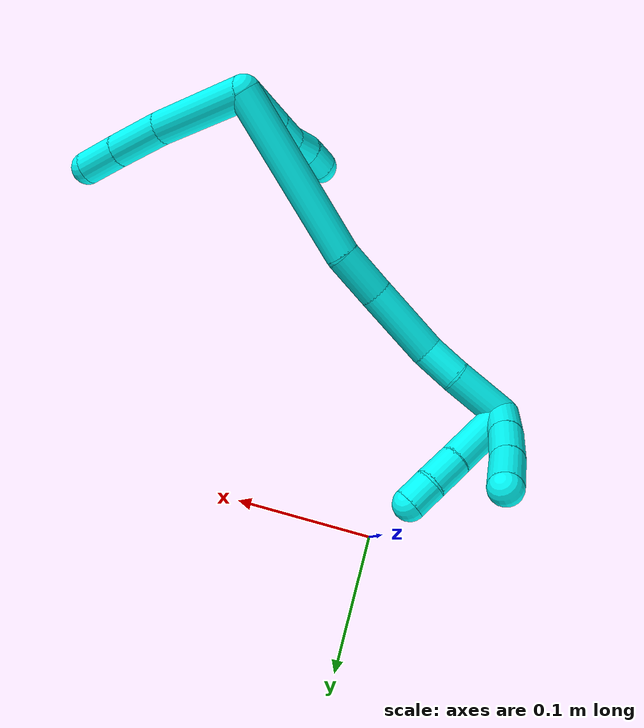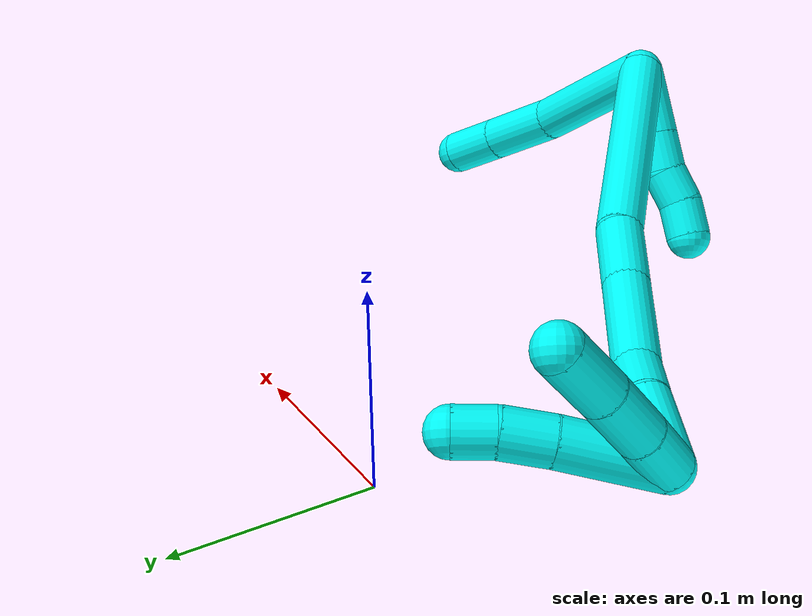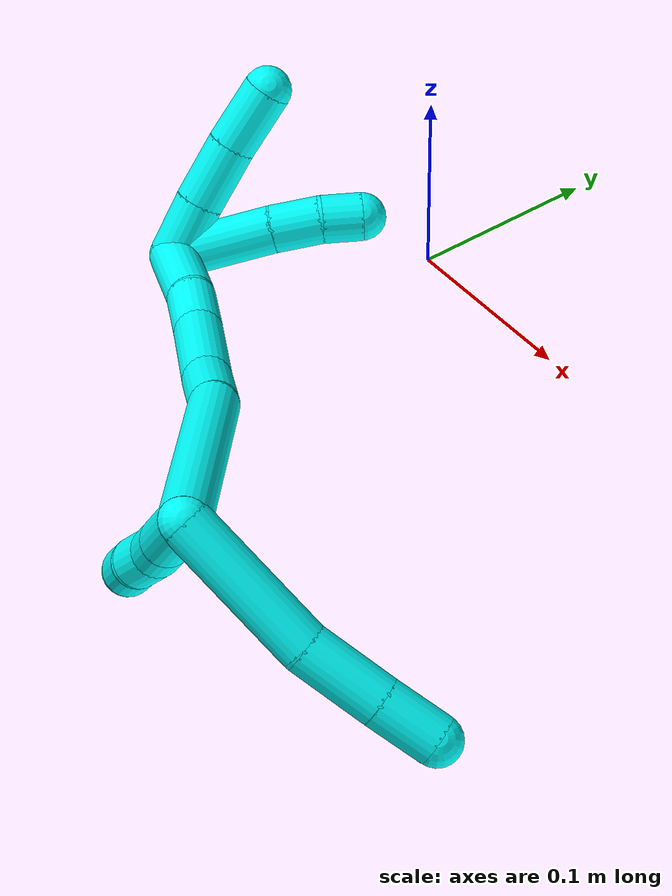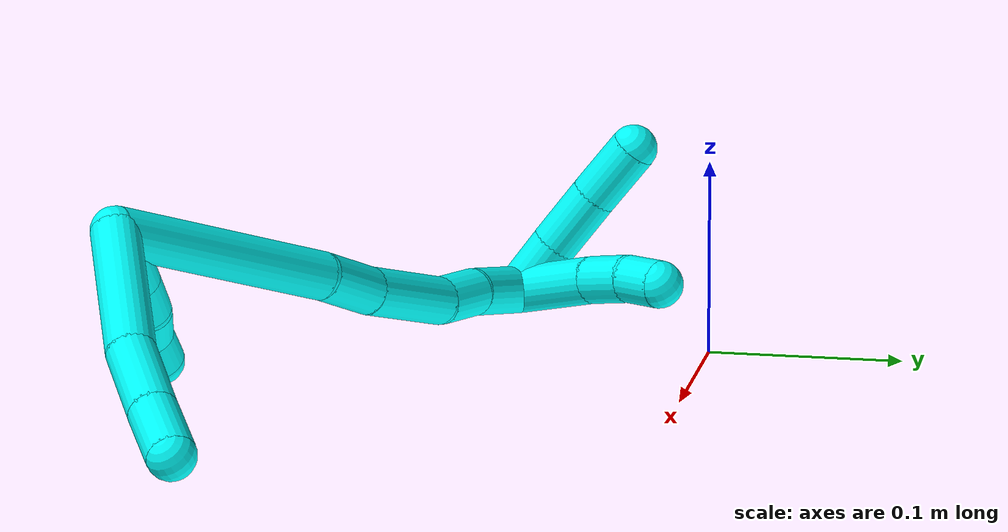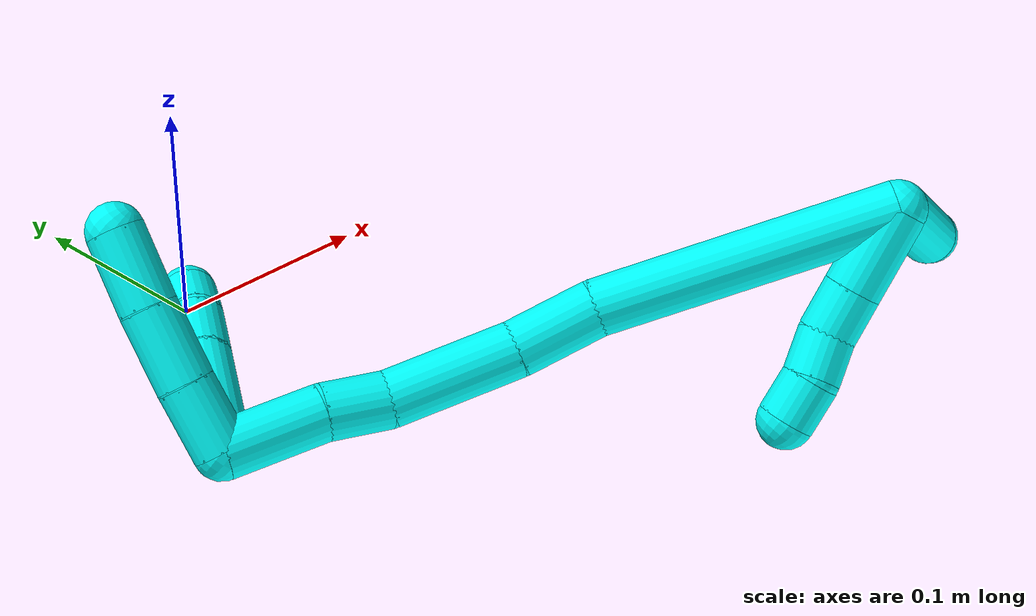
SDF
<sdf version="1.7">
 <world name="default">
  <model name="3">
   <static>0</static>
   <link name="3">
    <collision name="collision-cylinder-e_1_2_8">
     <pose>0.037596 0.007895 -0.004561 -2.09462 1.33288 -1.87535</pose>
     <geometry><cylinder><radius>0.0125</radius><length>0.077372</length></cylinder></geometry>
     <surface>
      <friction><ode><mu>1.16</mu><mu2>1.16</mu2><slip1>0</slip1><slip2>0</slip2></ode></friction>
      <contact><ode><kp>1e+06</kp><kd>1</kd><max_vel>0</max_vel><min_depth>0.001</min_depth></ode></contact>
     </surface>
    </collision>
    <visual name="visual-cylinder-e_1_2_8">
     <pose>0.037596 0.007895 -0.004561 -2.09462 1.33288 -1.87535</pose>
     <geometry><cylinder><radius>0.0125</radius><length>0.077372</length></cylinder></geometry>
     <material><ambient>0.003922 1 0.996078 1</ambient></material>
    </visual>
    <collision name="collision-cylinder-e_2_8_9">
     <pose>0.094361 0.023644 -0.011106 -1.81838 1.17094 -1.41068</pose>
     <geometry><cylinder><radius>0.0125</radius><length>0.041621</length></cylinder></geometry>
     <surface>
      <friction><ode><mu>1.16</mu><mu2>1.16</mu2><slip1>0</slip1><slip2>0</slip2></ode></friction>
      <contact><ode><kp>1e+06</kp><kd>1</kd><max_vel>0</max_vel><min_depth>0.001</min_depth></ode></contact>
     </surface>
    </collision>
    <visual name="visual-cylinder-e_2_8_9">
     <pose>0.094361 0.023644 -0.011106 -1.81838 1.17094 -1.41068</pose>
     <geometry><cylinder><radius>0.0125</radius><length>0.041621</length></cylinder></geometry>
     <material><ambient>0.003922 1 0.996078 1</ambient></material>
    </visual>
    <collision name="collision-cylinder-e_3_9_6">
     <pose>0.127638 0.03773 -0.014671 -1.81902 1.14321 -1.3815</pose>
     <geometry><cylinder><radius>0.0125</radius><length>0.031008</length></cylinder></geometry>
     <surface>
      <friction><ode><mu>1.16</mu><mu2>1.16</mu2><slip1>0</slip1><slip2>0</slip2></ode></friction>
      <contact><ode><kp>1e+06</kp><kd>1</kd><max_vel>0</max_vel><min_depth>0.001</min_depth></ode></contact>
     </surface>
    </collision>
    <visual name="visual-cylinder-e_3_9_6">
     <pose>0.127638 0.03773 -0.014671 -1.81902 1.14321 -1.3815</pose>
     <geometry><cylinder><radius>0.0125</radius><length>0.031008</length></cylinder></geometry>
     <material><ambient>0.003922 1 0.996078 1</ambient></material>
    </visual>
    <collision name="collision-cylinder-e_1_2_10">
     <pose>-0.000119 -0.004001 -0.018741 2.93127 -0.006199 -0.058714</pose>
     <geometry><cylinder><radius>0.0125</radius><length>0.038328</length></cylinder></geometry>
     <surface>
      <friction><ode><mu>1.16</mu><mu2>1.16</mu2><slip1>0</slip1><slip2>0</slip2></ode></friction>
      <contact><ode><kp>1e+06</kp><kd>1</kd><max_vel>0</max_vel><min_depth>0.001</min_depth></ode></contact>
     </surface>
    </collision>
    <visual name="visual-cylinder-e_1_2_10">
     <pose>-0.000119 -0.004001 -0.018741 2.93127 -0.006199 -0.058714</pose>
     <geometry><cylinder><radius>0.0125</radius><length>0.038328</length></cylinder></geometry>
     <material><ambient>0.003922 1 0.996078 1</ambient></material>
    </visual>
    <collision name="collision-cylinder-e_2_10_11">
     <pose>-0.000308 -0.010299 -0.048068 2.92785 -0.006481 -0.060396</pose>
     <geometry><cylinder><radius>0.0125</radius><length>0.021664</length></cylinder></geometry>
     <surface>
      <friction><ode><mu>1.16</mu><mu2>1.16</mu2><slip1>0</slip1><slip2>0</slip2></ode></friction>
      <contact><ode><kp>1e+06</kp><kd>1</kd><max_vel>0</max_vel><min_depth>0.001</min_depth></ode></contact>
     </surface>
    </collision>
    <visual name="visual-cylinder-e_2_10_11">
     <pose>-0.000308 -0.010299 -0.048068 2.92785 -0.006481 -0.060396</pose>
     <geometry><cylinder><radius>0.0125</radius><length>0.021664</length></cylinder></geometry>
     <material><ambient>0.003922 1 0.996078 1</ambient></material>
    </visual>
    <collision name="collision-cylinder-e_3_11_12">
     <pose>-0.001374 -0.016947 -0.067606 2.68928 -0.099705 -0.427076</pose>
     <geometry><cylinder><radius>0.0125</radius><length>0.020006</length></cylinder></geometry>
     <surface>
      <friction><ode><mu>1.16</mu><mu2>1.16</mu2><slip1>0</slip1><slip2>0</slip2></ode></friction>
      <contact><ode><kp>1e+06</kp><kd>1</kd><max_vel>0</max_vel><min_depth>0.001</min_depth></ode></contact>
     </surface>
    </collision>
    <visual name="visual-cylinder-e_3_11_12">
     <pose>-0.001374 -0.016947 -0.067606 2.68928 -0.099705 -0.427076</pose>
     <geometry><cylinder><radius>0.0125</radius><length>0.020006</length></cylinder></geometry>
     <material><ambient>0.003922 1 0.996078 1</ambient></material>
    </visual>
    <collision name="collision-cylinder-e_4_12_5">
     <pose>-0.002783 -0.023194 -0.086369 2.95058 -0.04133 -0.424969</pose>
     <geometry><cylinder><radius>0.0125</radius><length>0.020002</length></cylinder></geometry>
     <surface>
      <friction><ode><mu>1.16</mu><mu2>1.16</mu2><slip1>0</slip1><slip2>0</slip2></ode></friction>
      <contact><ode><kp>1e+06</kp><kd>1</kd><max_vel>0</max_vel><min_depth>0.001</min_depth></ode></contact>
     </surface>
    </collision>
    <visual name="visual-cylinder-e_4_12_5">
     <pose>-0.002783 -0.023194 -0.086369 2.95058 -0.04133 -0.424969</pose>
     <geometry><cylinder><radius>0.0125</radius><length>0.020002</length></cylinder></geometry>
     <material><ambient>0.003922 1 0.996078 1</ambient></material>
    </visual>
    <collision name="collision-cylinder-e_1_2_13">
     <pose>-0.024854 0.026591 -0.055174 -2.6925 -0.385496 1.41422</pose>
     <geometry><cylinder><radius>0.0125</radius><length>0.132196</length></cylinder></geometry>
     <surface>
      <friction><ode><mu>1.16</mu><mu2>1.16</mu2><slip1>0</slip1><slip2>0</slip2></ode></friction>
      <contact><ode><kp>1e+06</kp><kd>1</kd><max_vel>0</max_vel><min_depth>0.001</min_depth></ode></contact>
     </surface>
    </collision>
    <visual name="visual-cylinder-e_1_2_13">
     <pose>-0.024854 0.026591 -0.055174 -2.6925 -0.385496 1.41422</pose>
     <geometry><cylinder><radius>0.0125</radius><length>0.132196</length></cylinder></geometry>
     <material><ambient>0.003922 1 0.996078 1</ambient></material>
    </visual>
    <collision name="collision-cylinder-e_2_13_14">
     <pose>-0.057711 0.05718 -0.126882 -2.90431 -0.439739 2.1616</pose>
     <geometry><cylinder><radius>0.0125</radius><length>0.037598</length></cylinder></geometry>
     <surface>
      <friction><ode><mu>1.16</mu><mu2>1.16</mu2><slip1>0</slip1><slip2>0</slip2></ode></friction>
      <contact><ode><kp>1e+06</kp><kd>1</kd><max_vel>0</max_vel><min_depth>0.001</min_depth></ode></contact>
     </surface>
    </collision>
    <visual name="visual-cylinder-e_2_13_14">
     <pose>-0.057711 0.05718 -0.126882 -2.90431 -0.439739 2.1616</pose>
     <geometry><cylinder><radius>0.0125</radius><length>0.037598</length></cylinder></geometry>
     <material><ambient>0.003922 1 0.996078 1</ambient></material>
    </visual>
    <collision name="collision-cylinder-e_3_14_15">
     <pose>-0.080112 0.068924 -0.167038 -2.82475 -0.524964 2.06871</pose>
     <geometry><cylinder><radius>0.0125</radius><length>0.057457</length></cylinder></geometry>
     <surface>
      <friction><ode><mu>1.16</mu><mu2>1.16</mu2><slip1>0</slip1><slip2>0</slip2></ode></friction>
      <contact><ode><kp>1e+06</kp><kd>1</kd><max_vel>0</max_vel><min_depth>0.001</min_depth></ode></contact>
     </surface>
    </collision>
    <visual name="visual-cylinder-e_3_14_15">
     <pose>-0.080112 0.068924 -0.167038 -2.82475 -0.524964 2.06871</pose>
     <geometry><cylinder><radius>0.0125</radius><length>0.057457</length></cylinder></geometry>
     <material><ambient>0.003922 1 0.996078 1</ambient></material>
    </visual>
    <collision name="collision-cylinder-e_4_15_16">
     <pose>-0.104222 0.081082 -0.199864 -2.69442 -0.760569 2.10722</pose>
     <geometry><cylinder><radius>0.0125</radius><length>0.028178</length></cylinder></geometry>
     <surface>
      <friction><ode><mu>1.16</mu><mu2>1.16</mu2><slip1>0</slip1><slip2>0</slip2></ode></friction>
      <contact><ode><kp>1e+06</kp><kd>1</kd><max_vel>0</max_vel><min_depth>0.001</min_depth></ode></contact>
     </surface>
    </collision>
    <visual name="visual-cylinder-e_4_15_16">
     <pose>-0.104222 0.081082 -0.199864 -2.69442 -0.760569 2.10722</pose>
     <geometry><cylinder><radius>0.0125</radius><length>0.028178</length></cylinder></geometry>
     <material><ambient>0.003922 1 0.996078 1</ambient></material>
    </visual>
    <collision name="collision-cylinder-e_5_16_1">
     <pose>-0.12793 0.089777 -0.225872 -2.89214 -0.679036 2.45939</pose>
     <geometry><cylinder><radius>0.0125</radius><length>0.044572</length></cylinder></geometry>
     <surface>
      <friction><ode><mu>1.16</mu><mu2>1.16</mu2><slip1>0</slip1><slip2>0</slip2></ode></friction>
      <contact><ode><kp>1e+06</kp><kd>1</kd><max_vel>0</max_vel><min_depth>0.001</min_depth></ode></contact>
     </surface>
    </collision>
    <visual name="visual-cylinder-e_5_16_1">
     <pose>-0.12793 0.089777 -0.225872 -2.89214 -0.679036 2.45939</pose>
     <geometry><cylinder><radius>0.0125</radius><length>0.044572</length></cylinder></geometry>
     <material><ambient>0.003922 1 0.996078 1</ambient></material>
    </visual>
    <collision name="collision-cylinder-e_1_1_17">
     <pose>-0.13328 0.118613 -0.236854 -1.33791 0.330115 -0.261863</pose>
     <geometry><cylinder><radius>0.0125</radius><length>0.053352</length></cylinder></geometry>
     <surface>
      <friction><ode><mu>1.16</mu><mu2>1.16</mu2><slip1>0</slip1><slip2>0</slip2></ode></friction>
      <contact><ode><kp>1e+06</kp><kd>1</kd><max_vel>0</max_vel><min_depth>0.001</min_depth></ode></contact>
     </surface>
    </collision>
    <visual name="visual-cylinder-e_1_1_17">
     <pose>-0.13328 0.118613 -0.236854 -1.33791 0.330115 -0.261863</pose>
     <geometry><cylinder><radius>0.0125</radius><length>0.053352</length></cylinder></geometry>
     <material><ambient>0.003922 1 0.996078 1</ambient></material>
    </visual>
    <collision name="collision-cylinder-e_2_17_18">
     <pose>-0.119808 0.154853 -0.228808 -1.38292 0.385341 -0.320224</pose>
     <geometry><cylinder><radius>0.0125</radius><length>0.025671</length></cylinder></geometry>
     <surface>
      <friction><ode><mu>1.16</mu><mu2>1.16</mu2><slip1>0</slip1><slip2>0</slip2></ode></friction>
      <contact><ode><kp>1e+06</kp><kd>1</kd><max_vel>0</max_vel><min_depth>0.001</min_depth></ode></contact>
     </surface>
    </collision>
    <visual name="visual-cylinder-e_2_17_18">
     <pose>-0.119808 0.154853 -0.228808 -1.38292 0.385341 -0.320224</pose>
     <geometry><cylinder><radius>0.0125</radius><length>0.025671</length></cylinder></geometry>
     <material><ambient>0.003922 1 0.996078 1</ambient></material>
    </visual>
    <collision name="collision-cylinder-e_3_18_4">
     <pose>-0.110067 0.175797 -0.226269 -1.53649 0.487823 -0.471983</pose>
     <geometry><cylinder><radius>0.0125</radius><length>0.020977</length></cylinder></geometry>
     <surface>
      <friction><ode><mu>1.16</mu><mu2>1.16</mu2><slip1>0</slip1><slip2>0</slip2></ode></friction>
      <contact><ode><kp>1e+06</kp><kd>1</kd><max_vel>0</max_vel><min_depth>0.001</min_depth></ode></contact>
     </surface>
    </collision>
    <visual name="visual-cylinder-e_3_18_4">
     <pose>-0.110067 0.175797 -0.226269 -1.53649 0.487823 -0.471983</pose>
     <geometry><cylinder><radius>0.0125</radius><length>0.020977</length></cylinder></geometry>
     <material><ambient>0.003922 1 0.996078 1</ambient></material>
    </visual>
    <collision name="collision-cylinder-e_1_1_19">
     <pose>-0.149223 0.106404 -0.23647 -1.10487 -0.485806 0.303168</pose>
     <geometry><cylinder><radius>0.0125</radius><length>0.031252</length></cylinder></geometry>
     <surface>
      <friction><ode><mu>1.16</mu><mu2>1.16</mu2><slip1>0</slip1><slip2>0</slip2></ode></friction>
      <contact><ode><kp>1e+06</kp><kd>1</kd><max_vel>0</max_vel><min_depth>0.001</min_depth></ode></contact>
     </surface>
    </collision>
    <visual name="visual-cylinder-e_1_1_19">
     <pose>-0.149223 0.106404 -0.23647 -1.10487 -0.485806 0.303168</pose>
     <geometry><cylinder><radius>0.0125</radius><length>0.031252</length></cylinder></geometry>
     <material><ambient>0.003922 1 0.996078 1</ambient></material>
    </visual>
    <collision name="collision-cylinder-e_2_19_20">
     <pose>-0.163555 0.13266 -0.223069 -1.0936 -0.42224 0.259444</pose>
     <geometry><cylinder><radius>0.0125</radius><length>0.034338</length></cylinder></geometry>
     <surface>
      <friction><ode><mu>1.16</mu><mu2>1.16</mu2><slip1>0</slip1><slip2>0</slip2></ode></friction>
      <contact><ode><kp>1e+06</kp><kd>1</kd><max_vel>0</max_vel><min_depth>0.001</min_depth></ode></contact>
     </surface>
    </collision>
    <visual name="visual-cylinder-e_2_19_20">
     <pose>-0.163555 0.13266 -0.223069 -1.0936 -0.42224 0.259444</pose>
     <geometry><cylinder><radius>0.0125</radius><length>0.034338</length></cylinder></geometry>
     <material><ambient>0.003922 1 0.996078 1</ambient></material>
    </visual>
    <collision name="collision-cylinder-e_3_20_3">
     <pose>-0.176623 0.160792 -0.208298 -1.08118 -0.358206 0.216485</pose>
     <geometry><cylinder><radius>0.0125</radius><length>0.03441</length></cylinder></geometry>
     <surface>
      <friction><ode><mu>1.16</mu><mu2>1.16</mu2><slip1>0</slip1><slip2>0</slip2></ode></friction>
      <contact><ode><kp>1e+06</kp><kd>1</kd><max_vel>0</max_vel><min_depth>0.001</min_depth></ode></contact>
     </surface>
    </collision>
    <visual name="visual-cylinder-e_3_20_3">
     <pose>-0.176623 0.160792 -0.208298 -1.08118 -0.358206 0.216485</pose>
     <geometry><cylinder><radius>0.0125</radius><length>0.03441</length></cylinder></geometry>
     <material><ambient>0.003922 1 0.996078 1</ambient></material>
    </visual>
    <collision name="collision-sphere-3">
     <pose>-0.182655 0.175012 -0.200721 0 -0 0</pose>
     <geometry><sphere><radius>0.0125</radius></sphere></geometry>
     <surface>
      <friction><ode><mu>1.16</mu><mu2>1.16</mu2><slip1>0</slip1><slip2>0</slip2></ode></friction>
      <contact><ode><kp>1e+06</kp><kd>1</kd><max_vel>0</max_vel><min_depth>0.001</min_depth></ode></contact>
     </surface>
    </collision>
    <visual name="visual-sphere-3">
     <pose>-0.182655 0.175012 -0.200721 0 -0 0</pose>
     <geometry><sphere><radius>0.0125</radius></sphere></geometry>
     <material><ambient>0.003922 1 0.996078 1</ambient></material>
    </visual>
    <collision name="collision-sphere-20">
     <pose>-0.170591 0.146572 -0.215876 0 -0 0</pose>
     <geometry><sphere><radius>0.0125</radius></sphere></geometry>
     <surface>
      <friction><ode><mu>1.16</mu><mu2>1.16</mu2><slip1>0</slip1><slip2>0</slip2></ode></friction>
      <contact><ode><kp>1e+06</kp><kd>1</kd><max_vel>0</max_vel><min_depth>0.001</min_depth></ode></contact>
     </surface>
    </collision>
    <visual name="visual-sphere-20">
     <pose>-0.170591 0.146572 -0.215876 0 -0 0</pose>
     <geometry><sphere><radius>0.0125</radius></sphere></geometry>
     <material><ambient>0.003922 1 0.996078 1</ambient></material>
    </visual>
    <collision name="collision-sphere-19">
     <pose>-0.156519 0.118749 -0.230262 0 -0 0</pose>
     <geometry><sphere><radius>0.0125</radius></sphere></geometry>
     <surface>
      <friction><ode><mu>1.16</mu><mu2>1.16</mu2><slip1>0</slip1><slip2>0</slip2></ode></friction>
      <contact><ode><kp>1e+06</kp><kd>1</kd><max_vel>0</max_vel><min_depth>0.001</min_depth></ode></contact>
     </surface>
    </collision>
    <visual name="visual-sphere-19">
     <pose>-0.156519 0.118749 -0.230262 0 -0 0</pose>
     <geometry><sphere><radius>0.0125</radius></sphere></geometry>
     <material><ambient>0.003922 1 0.996078 1</ambient></material>
    </visual>
    <collision name="collision-sphere-11">
     <pose>-0.000378 -0.012597 -0.058653 0 -0 0</pose>
     <geometry><sphere><radius>0.0125</radius></sphere></geometry>
     <surface>
      <friction><ode><mu>1.16</mu><mu2>1.16</mu2><slip1>0</slip1><slip2>0</slip2></ode></friction>
      <contact><ode><kp>1e+06</kp><kd>1</kd><max_vel>0</max_vel><min_depth>0.001</min_depth></ode></contact>
     </surface>
    </collision>
    <visual name="visual-sphere-11">
     <pose>-0.000378 -0.012597 -0.058653 0 -0 0</pose>
     <geometry><sphere><radius>0.0125</radius></sphere></geometry>
     <material><ambient>0.003922 1 0.996078 1</ambient></material>
    </visual>
    <collision name="collision-sphere-10">
     <pose>-0.000238 -0.008002 -0.037483 0 -0 0</pose>
     <geometry><sphere><radius>0.0125</radius></sphere></geometry>
     <surface>
      <friction><ode><mu>1.16</mu><mu2>1.16</mu2><slip1>0</slip1><slip2>0</slip2></ode></friction>
      <contact><ode><kp>1e+06</kp><kd>1</kd><max_vel>0</max_vel><min_depth>0.001</min_depth></ode></contact>
     </surface>
    </collision>
    <visual name="visual-sphere-10">
     <pose>-0.000238 -0.008002 -0.037483 0 -0 0</pose>
     <geometry><sphere><radius>0.0125</radius></sphere></geometry>
     <material><ambient>0.003922 1 0.996078 1</ambient></material>
    </visual>
    <collision name="collision-sphere-6">
     <pose>0.141746 0.043962 -0.016251 0 -0 0</pose>
     <geometry><sphere><radius>0.0125</radius></sphere></geometry>
     <surface>
      <friction><ode><mu>1.16</mu><mu2>1.16</mu2><slip1>0</slip1><slip2>0</slip2></ode></friction>
      <contact><ode><kp>1e+06</kp><kd>1</kd><max_vel>0</max_vel><min_depth>0.001</min_depth></ode></contact>
     </surface>
    </collision>
    <visual name="visual-sphere-6">
     <pose>0.141746 0.043962 -0.016251 0 -0 0</pose>
     <geometry><sphere><radius>0.0125</radius></sphere></geometry>
     <material><ambient>0.003922 1 0.996078 1</ambient></material>
    </visual>
    <collision name="collision-sphere-9">
     <pose>0.11353 0.031498 -0.013092 0 -0 0</pose>
     <geometry><sphere><radius>0.0125</radius></sphere></geometry>
     <surface>
      <friction><ode><mu>1.16</mu><mu2>1.16</mu2><slip1>0</slip1><slip2>0</slip2></ode></friction>
      <contact><ode><kp>1e+06</kp><kd>1</kd><max_vel>0</max_vel><min_depth>0.001</min_depth></ode></contact>
     </surface>
    </collision>
    <visual name="visual-sphere-9">
     <pose>0.11353 0.031498 -0.013092 0 -0 0</pose>
     <geometry><sphere><radius>0.0125</radius></sphere></geometry>
     <material><ambient>0.003922 1 0.996078 1</ambient></material>
    </visual>
    <collision name="collision-sphere-2">
     <geometry><sphere><radius>0.0125</radius></sphere></geometry>
     <surface>
      <friction><ode><mu>1.16</mu><mu2>1.16</mu2><slip1>0</slip1><slip2>0</slip2></ode></friction>
      <contact><ode><kp>1e+06</kp><kd>1</kd><max_vel>0</max_vel><min_depth>0.001</min_depth></ode></contact>
     </surface>
    </collision>
    <visual name="visual-sphere-2">
     <geometry><sphere><radius>0.0125</radius></sphere></geometry>
     <material><ambient>0.003922 1 0.996078 1</ambient></material>
    </visual>
    <collision name="collision-sphere-8">
     <pose>0.075192 0.01579 -0.009121 0 -0 0</pose>
     <geometry><sphere><radius>0.0125</radius></sphere></geometry>
     <surface>
      <friction><ode><mu>1.16</mu><mu2>1.16</mu2><slip1>0</slip1><slip2>0</slip2></ode></friction>
      <contact><ode><kp>1e+06</kp><kd>1</kd><max_vel>0</max_vel><min_depth>0.001</min_depth></ode></contact>
     </surface>
    </collision>
    <visual name="visual-sphere-8">
     <pose>0.075192 0.01579 -0.009121 0 -0 0</pose>
     <geometry><sphere><radius>0.0125</radius></sphere></geometry>
     <material><ambient>0.003922 1 0.996078 1</ambient></material>
    </visual>
    <collision name="collision-sphere-12">
     <pose>-0.002369 -0.021297 -0.076558 0 -0 0</pose>
     <geometry><sphere><radius>0.0125</radius></sphere></geometry>
     <surface>
      <friction><ode><mu>1.16</mu><mu2>1.16</mu2><slip1>0</slip1><slip2>0</slip2></ode></friction>
      <contact><ode><kp>1e+06</kp><kd>1</kd><max_vel>0</max_vel><min_depth>0.001</min_depth></ode></contact>
     </surface>
    </collision>
    <visual name="visual-sphere-12">
     <pose>-0.002369 -0.021297 -0.076558 0 -0 0</pose>
     <geometry><sphere><radius>0.0125</radius></sphere></geometry>
     <material><ambient>0.003922 1 0.996078 1</ambient></material>
    </visual>
    <collision name="collision-sphere-5">
     <pose>-0.003196 -0.025092 -0.096179 0 -0 0</pose>
     <geometry><sphere><radius>0.0125</radius></sphere></geometry>
     <surface>
      <friction><ode><mu>1.16</mu><mu2>1.16</mu2><slip1>0</slip1><slip2>0</slip2></ode></friction>
      <contact><ode><kp>1e+06</kp><kd>1</kd><max_vel>0</max_vel><min_depth>0.001</min_depth></ode></contact>
     </surface>
    </collision>
    <visual name="visual-sphere-5">
     <pose>-0.003196 -0.025092 -0.096179 0 -0 0</pose>
     <geometry><sphere><radius>0.0125</radius></sphere></geometry>
     <material><ambient>0.003922 1 0.996078 1</ambient></material>
    </visual>
    <collision name="collision-sphere-13">
     <pose>-0.049708 0.053181 -0.110348 0 -0 0</pose>
     <geometry><sphere><radius>0.0125</radius></sphere></geometry>
     <surface>
      <friction><ode><mu>1.16</mu><mu2>1.16</mu2><slip1>0</slip1><slip2>0</slip2></ode></friction>
      <contact><ode><kp>1e+06</kp><kd>1</kd><max_vel>0</max_vel><min_depth>0.001</min_depth></ode></contact>
     </surface>
    </collision>
    <visual name="visual-sphere-13">
     <pose>-0.049708 0.053181 -0.110348 0 -0 0</pose>
     <geometry><sphere><radius>0.0125</radius></sphere></geometry>
     <material><ambient>0.003922 1 0.996078 1</ambient></material>
    </visual>
    <collision name="collision-sphere-14">
     <pose>-0.065714 0.061178 -0.143416 0 -0 0</pose>
     <geometry><sphere><radius>0.0125</radius></sphere></geometry>
     <surface>
      <friction><ode><mu>1.16</mu><mu2>1.16</mu2><slip1>0</slip1><slip2>0</slip2></ode></friction>
      <contact><ode><kp>1e+06</kp><kd>1</kd><max_vel>0</max_vel><min_depth>0.001</min_depth></ode></contact>
     </surface>
    </collision>
    <visual name="visual-sphere-14">
     <pose>-0.065714 0.061178 -0.143416 0 -0 0</pose>
     <geometry><sphere><radius>0.0125</radius></sphere></geometry>
     <material><ambient>0.003922 1 0.996078 1</ambient></material>
    </visual>
    <collision name="collision-sphere-15">
     <pose>-0.09451 0.076669 -0.190661 0 -0 0</pose>
     <geometry><sphere><radius>0.0125</radius></sphere></geometry>
     <surface>
      <friction><ode><mu>1.16</mu><mu2>1.16</mu2><slip1>0</slip1><slip2>0</slip2></ode></friction>
      <contact><ode><kp>1e+06</kp><kd>1</kd><max_vel>0</max_vel><min_depth>0.001</min_depth></ode></contact>
     </surface>
    </collision>
    <visual name="visual-sphere-15">
     <pose>-0.09451 0.076669 -0.190661 0 -0 0</pose>
     <geometry><sphere><radius>0.0125</radius></sphere></geometry>
     <material><ambient>0.003922 1 0.996078 1</ambient></material>
    </visual>
    <collision name="collision-sphere-16">
     <pose>-0.113934 0.085496 -0.209067 0 -0 0</pose>
     <geometry><sphere><radius>0.0125</radius></sphere></geometry>
     <surface>
      <friction><ode><mu>1.16</mu><mu2>1.16</mu2><slip1>0</slip1><slip2>0</slip2></ode></friction>
      <contact><ode><kp>1e+06</kp><kd>1</kd><max_vel>0</max_vel><min_depth>0.001</min_depth></ode></contact>
     </surface>
    </collision>
    <visual name="visual-sphere-16">
     <pose>-0.113934 0.085496 -0.209067 0 -0 0</pose>
     <geometry><sphere><radius>0.0125</radius></sphere></geometry>
     <material><ambient>0.003922 1 0.996078 1</ambient></material>
    </visual>
    <collision name="collision-sphere-1">
     <pose>-0.141927 0.094059 -0.242678 0 -0 0</pose>
     <geometry><sphere><radius>0.0125</radius></sphere></geometry>
     <surface>
      <friction><ode><mu>1.16</mu><mu2>1.16</mu2><slip1>0</slip1><slip2>0</slip2></ode></friction>
      <contact><ode><kp>1e+06</kp><kd>1</kd><max_vel>0</max_vel><min_depth>0.001</min_depth></ode></contact>
     </surface>
    </collision>
    <visual name="visual-sphere-1">
     <pose>-0.141927 0.094059 -0.242678 0 -0 0</pose>
     <geometry><sphere><radius>0.0125</radius></sphere></geometry>
     <material><ambient>0.003922 1 0.996078 1</ambient></material>
    </visual>
    <collision name="collision-sphere-18">
     <pose>-0.114983 0.166538 -0.226586 0 -0 0</pose>
     <geometry><sphere><radius>0.0125</radius></sphere></geometry>
     <surface>
      <friction><ode><mu>1.16</mu><mu2>1.16</mu2><slip1>0</slip1><slip2>0</slip2></ode></friction>
      <contact><ode><kp>1e+06</kp><kd>1</kd><max_vel>0</max_vel><min_depth>0.001</min_depth></ode></contact>
     </surface>
    </collision>
    <visual name="visual-sphere-18">
     <pose>-0.114983 0.166538 -0.226586 0 -0 0</pose>
     <geometry><sphere><radius>0.0125</radius></sphere></geometry>
     <material><ambient>0.003922 1 0.996078 1</ambient></material>
    </visual>
    <collision name="collision-sphere-17">
     <pose>-0.124633 0.143167 -0.23103 0 -0 0</pose>
     <geometry><sphere><radius>0.0125</radius></sphere></geometry>
     <surface>
      <friction><ode><mu>1.16</mu><mu2>1.16</mu2><slip1>0</slip1><slip2>0</slip2></ode></friction>
      <contact><ode><kp>1e+06</kp><kd>1</kd><max_vel>0</max_vel><min_depth>0.001</min_depth></ode></contact>
     </surface>
    </collision>
    <visual name="visual-sphere-17">
     <pose>-0.124633 0.143167 -0.23103 0 -0 0</pose>
     <geometry><sphere><radius>0.0125</radius></sphere></geometry>
     <material><ambient>0.003922 1 0.996078 1</ambient></material>
    </visual>
    <collision name="collision-sphere-4">
     <pose>-0.105152 0.185057 -0.225951 0 -0 0</pose>
     <geometry><sphere><radius>0.0125</radius></sphere></geometry>
     <surface>
      <friction><ode><mu>1.16</mu><mu2>1.16</mu2><slip1>0</slip1><slip2>0</slip2></ode></friction>
      <contact><ode><kp>1e+06</kp><kd>1</kd><max_vel>0</max_vel><min_depth>0.001</min_depth></ode></contact>
     </surface>
    </collision>
    <visual name="visual-sphere-4">
     <pose>-0.105152 0.185057 -0.225951 0 -0 0</pose>
     <geometry><sphere><radius>0.0125</radius></sphere></geometry>
     <material><ambient>0.003922 1 0.996078 1</ambient></material>
    </visual>
    <inertial>
     <pose>-0.049133 0.059868 -0.118593 0 -0 0</pose>
     <mass>0.75</mass>
     <inertia>
      <ixx>0.000236</ixx>
      <ixy>0</ixy>
      <ixz>0</ixz>
      <iyy>0.00029</iyy>
      <iyz>0</iyz>
      <izz>-0.000108</izz>
     </inertia>
    </inertial>
   </link>
   <pose>0.167463 -0.268994 0.091269 0.361389 0.599965 0.07097</pose>
  </model>
 </world>
</sdf>
